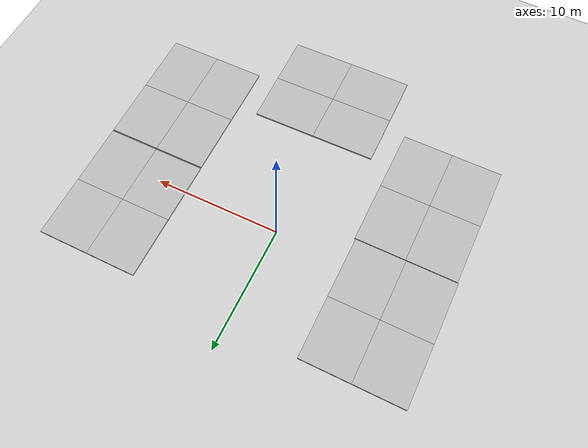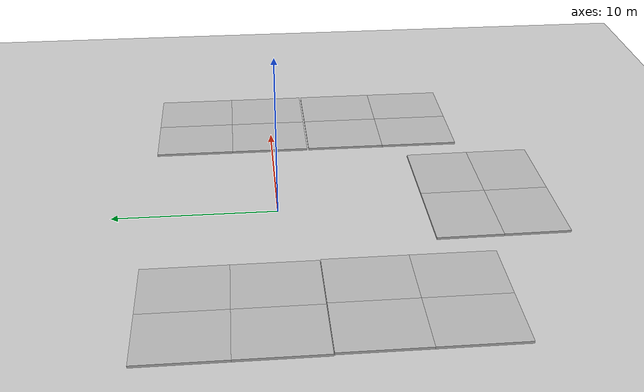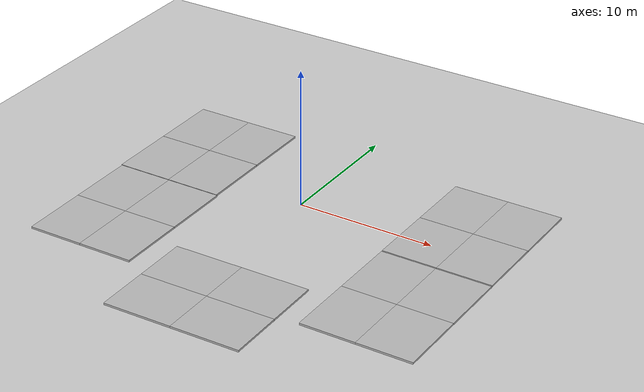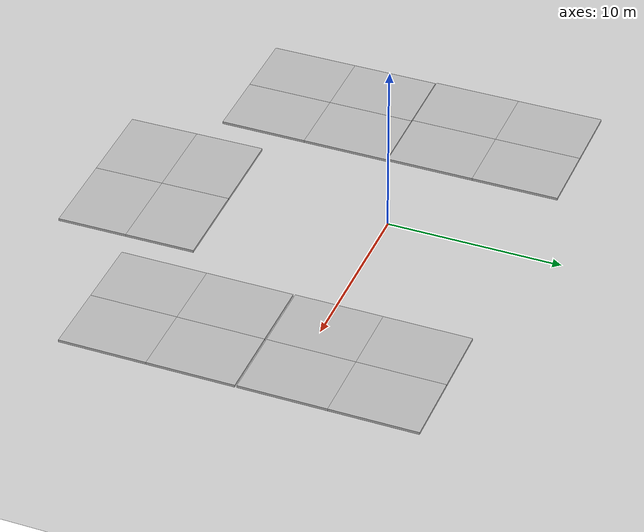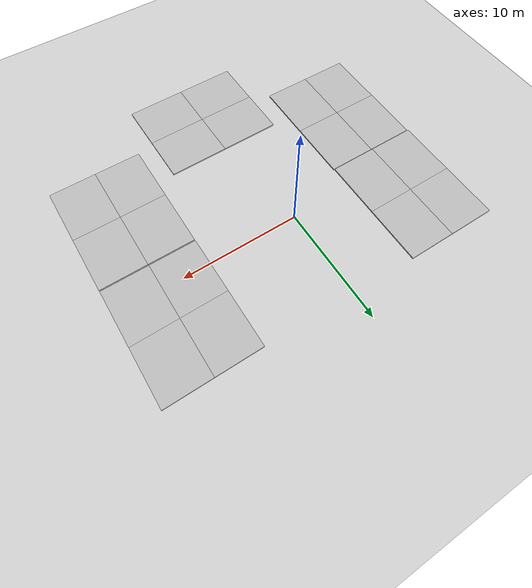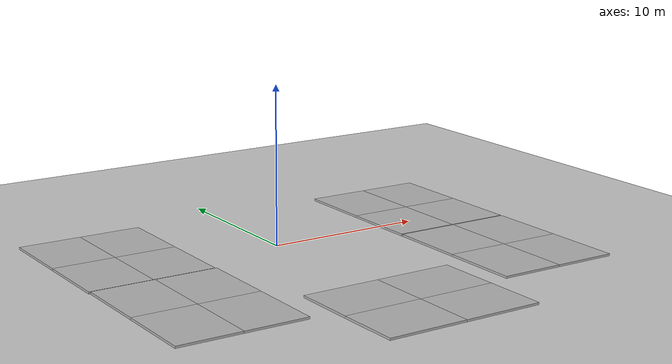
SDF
<sdf version="1.7">
 <world name="default">
  <light name="sun" type="directional">
   <pose>0 0 10 0 -0 0</pose>
   <diffuse>0.8 0.8 0.8 1</diffuse>
   <specular>0.2 0.2 0.2 1</specular>
   <attenuation>
    <range>1000</range>
    <constant>0.9</constant>
    <linear>0.01</linear>
    <quadratic>0.001</quadratic>
   </attenuation>
   <direction>-0.5 0.1 -0.9</direction>
   <spot><inner_angle>0</inner_angle><outer_angle>0</outer_angle><falloff>0</falloff></spot>
  </light>
  <model name="ground_plane">
   <static>1</static>
   <link name="link">
    <collision name="collision">
     <geometry><plane><normal>0 0 1</normal><size>100 100</size></plane></geometry>
     <surface><friction><ode><mu>100</mu><mu2>50</mu2></ode></friction></surface>
    </collision>
    <visual name="visual">
     <cast_shadows>0</cast_shadows>
     <geometry><plane><normal>0 0 1</normal><size>100 100</size></plane></geometry>
     <material>
      <script><uri>file://media/materials/scripts/gazebo.material</uri><name>Gazebo/Grey</name></script>
     </material>
    </visual>
   </link>
  </model>
  <gravity>0 0 -9.8</gravity>
  <magnetic_field>6e-06 2.3e-05 -4.2e-05</magnetic_field>
  <atmosphere type="adiabatic"/>
  <physics type="ode">
   <max_step_size>0.001</max_step_size>
   <real_time_factor>1</real_time_factor>
   <real_time_update_rate>1000</real_time_update_rate>
  </physics>
  <scene><ambient>0.4 0.4 0.4 1</ambient><background>0.7 0.7 0.7 1</background><shadows>1</shadows></scene>
  <audio><device>default</device></audio>
  <spherical_coordinates>
   <surface_model>EARTH_WGS84</surface_model>
   <latitude_deg>48.760277777778</latitude_deg>
   <longitude_deg>3.9947222222222</longitude_deg>
   <elevation>125</elevation>
   <heading_deg>180</heading_deg>
  </spherical_coordinates>
  <model name="mud_box">
   <static>1</static>
   <link name="link">
    <collision name="collision"><geometry><box><size>8 10 0.2</size></box></geometry></collision>
    <visual name="visual_1">
     <pose>-2 2.5 0 0 -0 0</pose>
     <cast_shadows>0</cast_shadows>
     <geometry><box><size>4 5 0.2</size></box></geometry>
     <material>
      <script>
       <uri>model://mud_box/materials/scripts</uri>
       <uri>model://mud_box/materials/textures</uri>
       <name>vrc/mud</name>
      </script>
     </material>
    </visual>
    <visual name="visual_2">
     <pose>2 2.5 0 0 -0 0</pose>
     <cast_shadows>0</cast_shadows>
     <geometry><box><size>4 5 0.2</size></box></geometry>
     <material>
      <script>
       <uri>model://mud_box/materials/scripts</uri>
       <uri>model://mud_box/materials/textures</uri>
       <name>vrc/mud</name>
      </script>
     </material>
    </visual>
    <visual name="visual_3">
     <pose>2 -2.5 0 0 -0 0</pose>
     <cast_shadows>0</cast_shadows>
     <geometry><box><size>4 5 0.2</size></box></geometry>
     <material>
      <script>
       <uri>model://mud_box/materials/scripts</uri>
       <uri>model://mud_box/materials/textures</uri>
       <name>vrc/mud</name>
      </script>
     </material>
    </visual>
    <visual name="visual_4">
     <pose>-2 -2.5 0 0 -0 0</pose>
     <cast_shadows>0</cast_shadows>
     <geometry><box><size>4 5 0.2</size></box></geometry>
     <material>
      <script>
       <uri>model://mud_box/materials/scripts</uri>
       <uri>model://mud_box/materials/textures</uri>
       <name>vrc/mud</name>
      </script>
     </material>
    </visual>
   </link>
   <pose>-9.48829 2.93941 0 0 -0 0</pose>
  </model>
  <model name="mud_box_clone">
   <static>1</static>
   <link name="link">
    <collision name="collision"><geometry><box><size>8 10 0.2</size></box></geometry></collision>
    <visual name="visual_1">
     <pose>-2 2.5 0 0 -0 0</pose>
     <cast_shadows>0</cast_shadows>
     <geometry><box><size>4 5 0.2</size></box></geometry>
     <material>
      <script>
       <uri>model://mud_box/materials/scripts</uri>
       <uri>model://mud_box/materials/textures</uri>
       <name>vrc/mud</name>
      </script>
     </material>
    </visual>
    <visual name="visual_2">
     <pose>2 2.5 0 0 -0 0</pose>
     <cast_shadows>0</cast_shadows>
     <geometry><box><size>4 5 0.2</size></box></geometry>
     <material>
      <script>
       <uri>model://mud_box/materials/scripts</uri>
       <uri>model://mud_box/materials/textures</uri>
       <name>vrc/mud</name>
      </script>
     </material>
    </visual>
    <visual name="visual_3">
     <pose>2 -2.5 0 0 -0 0</pose>
     <cast_shadows>0</cast_shadows>
     <geometry><box><size>4 5 0.2</size></box></geometry>
     <material>
      <script>
       <uri>model://mud_box/materials/scripts</uri>
       <uri>model://mud_box/materials/textures</uri>
       <name>vrc/mud</name>
      </script>
     </material>
    </visual>
    <visual name="visual_4">
     <pose>-2 -2.5 0 0 -0 0</pose>
     <cast_shadows>0</cast_shadows>
     <geometry><box><size>4 5 0.2</size></box></geometry>
     <material>
      <script>
       <uri>model://mud_box/materials/scripts</uri>
       <uri>model://mud_box/materials/textures</uri>
       <name>vrc/mud</name>
      </script>
     </material>
    </visual>
   </link>
   <pose>-9.40616 -7.10879 0 0 -0 0</pose>
  </model>
  <model name="mud_box_clone_0">
   <static>1</static>
   <link name="link">
    <collision name="collision"><geometry><box><size>8 10 0.2</size></box></geometry></collision>
    <visual name="visual_1">
     <pose>-2 2.5 0 0 -0 0</pose>
     <cast_shadows>0</cast_shadows>
     <geometry><box><size>4 5 0.2</size></box></geometry>
     <material>
      <script>
       <uri>model://mud_box/materials/scripts</uri>
       <uri>model://mud_box/materials/textures</uri>
       <name>vrc/mud</name>
      </script>
     </material>
    </visual>
    <visual name="visual_2">
     <pose>2 2.5 0 0 -0 0</pose>
     <cast_shadows>0</cast_shadows>
     <geometry><box><size>4 5 0.2</size></box></geometry>
     <material>
      <script>
       <uri>model://mud_box/materials/scripts</uri>
       <uri>model://mud_box/materials/textures</uri>
       <name>vrc/mud</name>
      </script>
     </material>
    </visual>
    <visual name="visual_3">
     <pose>2 -2.5 0 0 -0 0</pose>
     <cast_shadows>0</cast_shadows>
     <geometry><box><size>4 5 0.2</size></box></geometry>
     <material>
      <script>
       <uri>model://mud_box/materials/scripts</uri>
       <uri>model://mud_box/materials/textures</uri>
       <name>vrc/mud</name>
      </script>
     </material>
    </visual>
    <visual name="visual_4">
     <pose>-2 -2.5 0 0 -0 0</pose>
     <cast_shadows>0</cast_shadows>
     <geometry><box><size>4 5 0.2</size></box></geometry>
     <material>
      <script>
       <uri>model://mud_box/materials/scripts</uri>
       <uri>model://mud_box/materials/textures</uri>
       <name>vrc/mud</name>
      </script>
     </material>
    </visual>
   </link>
   <pose>11.6977 2.65437 0 0 -0 0</pose>
  </model>
  <model name="mud_box_clone_1">
   <static>1</static>
   <link name="link">
    <collision name="collision"><geometry><box><size>8 10 0.2</size></box></geometry></collision>
    <visual name="visual_1">
     <pose>-2 2.5 0 0 -0 0</pose>
     <cast_shadows>0</cast_shadows>
     <geometry><box><size>4 5 0.2</size></box></geometry>
     <material>
      <script>
       <uri>model://mud_box/materials/scripts</uri>
       <uri>model://mud_box/materials/textures</uri>
       <name>vrc/mud</name>
      </script>
     </material>
    </visual>
    <visual name="visual_2">
     <pose>2 2.5 0 0 -0 0</pose>
     <cast_shadows>0</cast_shadows>
     <geometry><box><size>4 5 0.2</size></box></geometry>
     <material>
      <script>
       <uri>model://mud_box/materials/scripts</uri>
       <uri>model://mud_box/materials/textures</uri>
       <name>vrc/mud</name>
      </script>
     </material>
    </visual>
    <visual name="visual_3">
     <pose>2 -2.5 0 0 -0 0</pose>
     <cast_shadows>0</cast_shadows>
     <geometry><box><size>4 5 0.2</size></box></geometry>
     <material>
      <script>
       <uri>model://mud_box/materials/scripts</uri>
       <uri>model://mud_box/materials/textures</uri>
       <name>vrc/mud</name>
      </script>
     </material>
    </visual>
    <visual name="visual_4">
     <pose>-2 -2.5 0 0 -0 0</pose>
     <cast_shadows>0</cast_shadows>
     <geometry><box><size>4 5 0.2</size></box></geometry>
     <material>
      <script>
       <uri>model://mud_box/materials/scripts</uri>
       <uri>model://mud_box/materials/textures</uri>
       <name>vrc/mud</name>
      </script>
     </material>
    </visual>
   </link>
   <pose>11.7124 -7.45511 0 0 -0 0</pose>
  </model>
  <model name="mud_box_clone_2">
   <static>1</static>
   <link name="link">
    <collision name="collision"><geometry><box><size>8 10 0.2</size></box></geometry></collision>
    <visual name="visual_1">
     <pose>-2 2.5 0 0 -0 0</pose>
     <cast_shadows>0</cast_shadows>
     <geometry><box><size>4 5 0.2</size></box></geometry>
     <material>
      <script>
       <uri>model://mud_box/materials/scripts</uri>
       <uri>model://mud_box/materials/textures</uri>
       <name>vrc/mud</name>
      </script>
     </material>
    </visual>
    <visual name="visual_2">
     <pose>2 2.5 0 0 -0 0</pose>
     <cast_shadows>0</cast_shadows>
     <geometry><box><size>4 5 0.2</size></box></geometry>
     <material>
      <script>
       <uri>model://mud_box/materials/scripts</uri>
       <uri>model://mud_box/materials/textures</uri>
       <name>vrc/mud</name>
      </script>
     </material>
    </visual>
    <visual name="visual_3">
     <pose>2 -2.5 0 0 -0 0</pose>
     <cast_shadows>0</cast_shadows>
     <geometry><box><size>4 5 0.2</size></box></geometry>
     <material>
      <script>
       <uri>model://mud_box/materials/scripts</uri>
       <uri>model://mud_box/materials/textures</uri>
       <name>vrc/mud</name>
      </script>
     </material>
    </visual>
    <visual name="visual_4">
     <pose>-2 -2.5 0 0 -0 0</pose>
     <cast_shadows>0</cast_shadows>
     <geometry><box><size>4 5 0.2</size></box></geometry>
     <material>
      <script>
       <uri>model://mud_box/materials/scripts</uri>
       <uri>model://mud_box/materials/textures</uri>
       <name>vrc/mud</name>
      </script>
     </material>
    </visual>
   </link>
   <pose>1.21938 -12.9608 0 0 -0 1.58117</pose>
  </model>
 </world>
</sdf>
